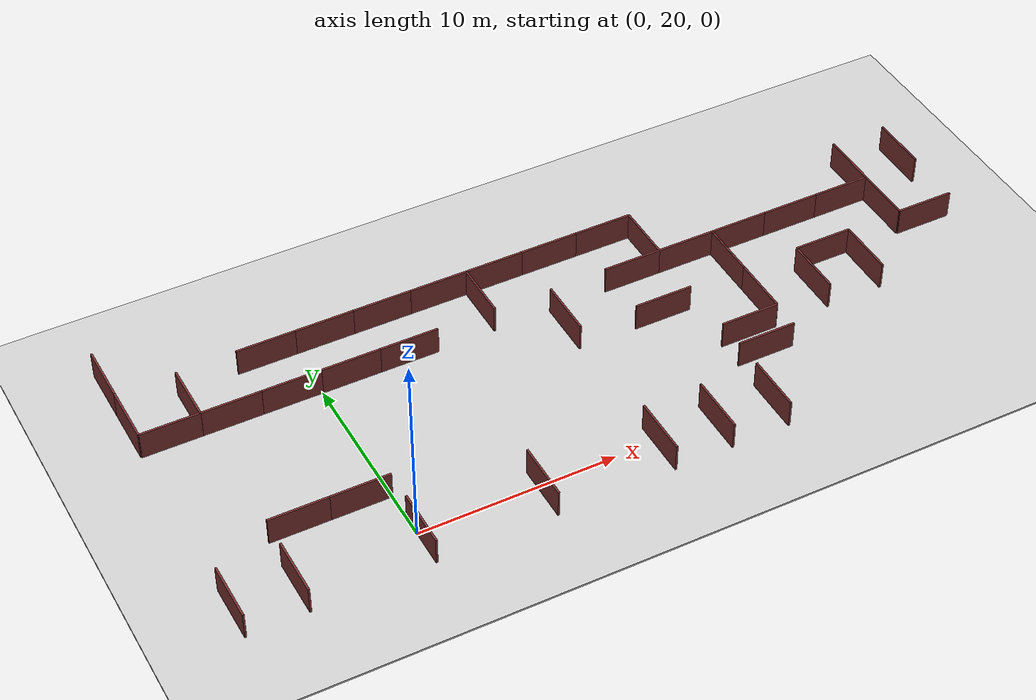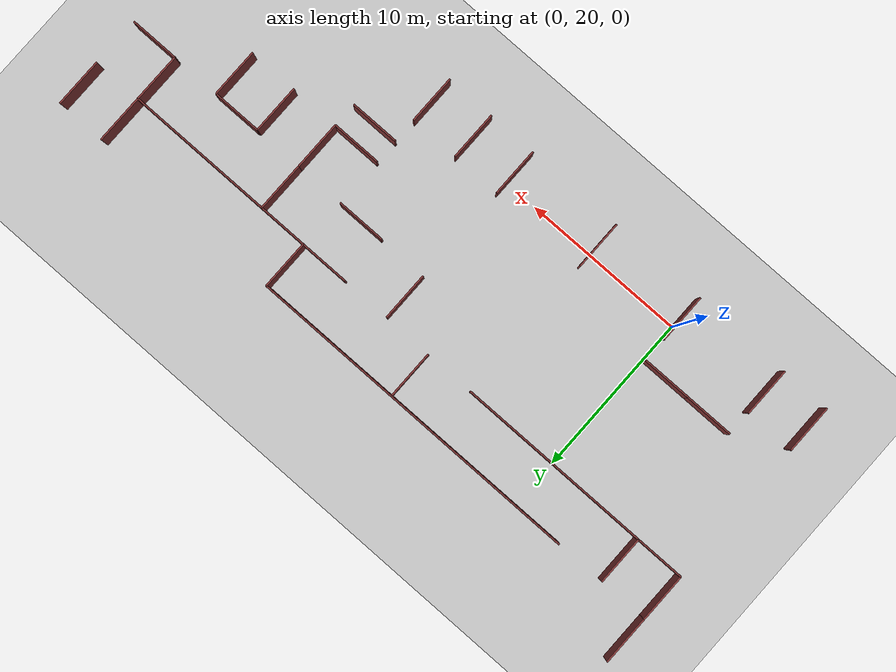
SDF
<sdf version="1.7">
 <world name="maze_world">
  <model name="ground">
   <static>true</static>
   <link name="ground_link">
    <collision name="collision"><geometry><box><size>150 150 0.1</size></box></geometry></collision>
    <visual name="visual">
     <geometry><box><size>150 150 0.1</size></box></geometry>
     <material><diffuse>0.8 0.8 0.8 1</diffuse></material>
    </visual>
   </link>
  </model>
  <model name="wall_w_141">
   <static>true</static>
   <pose>-9.0 19.5 0.75 0 0 1.5708</pose>
   <link name="link">
    <collision name="collision"><geometry><box><size>3 0.1 1.5</size></box></geometry></collision>
    <visual name="visual">
     <geometry><box><size>3 0.1 1.5</size></box></geometry>
     <material><diffuse>0.5 0.2 0.2 1</diffuse></material>
    </visual>
   </link>
  </model>
  <model name="wall_w_142">
   <static>true</static>
   <pose>-6.0 19.5 0.75 0 0 1.5708</pose>
   <link name="link">
    <collision name="collision"><geometry><box><size>3 0.1 1.5</size></box></geometry></collision>
    <visual name="visual">
     <geometry><box><size>3 0.1 1.5</size></box></geometry>
     <material><diffuse>0.5 0.2 0.2 1</diffuse></material>
    </visual>
   </link>
  </model>
  <model name="wall_w_143">
   <static>true</static>
   <pose>0.0 19.5 0.75 0 0 1.5708</pose>
   <link name="link">
    <collision name="collision"><geometry><box><size>3 0.1 1.5</size></box></geometry></collision>
    <visual name="visual">
     <geometry><box><size>3 0.1 1.5</size></box></geometry>
     <material><diffuse>0.5 0.2 0.2 1</diffuse></material>
    </visual>
   </link>
  </model>
  <model name="wall_w_145">
   <static>true</static>
   <pose>6.0 19.5 0.75 0 0 1.5708</pose>
   <link name="link">
    <collision name="collision"><geometry><box><size>3 0.1 1.5</size></box></geometry></collision>
    <visual name="visual">
     <geometry><box><size>3 0.1 1.5</size></box></geometry>
     <material><diffuse>0.5 0.2 0.2 1</diffuse></material>
    </visual>
   </link>
  </model>
  <model name="wall_w_148">
   <static>true</static>
   <pose>12.0 19.5 0.75 0 0 1.5708</pose>
   <link name="link">
    <collision name="collision"><geometry><box><size>3 0.1 1.5</size></box></geometry></collision>
    <visual name="visual">
     <geometry><box><size>3 0.1 1.5</size></box></geometry>
     <material><diffuse>0.5 0.2 0.2 1</diffuse></material>
    </visual>
   </link>
  </model>
  <model name="wall_w_149">
   <static>true</static>
   <pose>15.0 19.5 0.75 0 0 1.5708</pose>
   <link name="link">
    <collision name="collision"><geometry><box><size>3 0.1 1.5</size></box></geometry></collision>
    <visual name="visual">
     <geometry><box><size>3 0.1 1.5</size></box></geometry>
     <material><diffuse>0.5 0.2 0.2 1</diffuse></material>
    </visual>
   </link>
  </model>
  <model name="wall_w_151">
   <static>true</static>
   <pose>18.0 19.5 0.75 0 0 1.5708</pose>
   <link name="link">
    <collision name="collision"><geometry><box><size>3 0.1 1.5</size></box></geometry></collision>
    <visual name="visual">
     <geometry><box><size>3 0.1 1.5</size></box></geometry>
     <material><diffuse>0.5 0.2 0.2 1</diffuse></material>
    </visual>
   </link>
  </model>
  <model name="wall_n_181">
   <static>true</static>
   <pose>19.5 24.0 0.75 0 0 0</pose>
   <link name="link">
    <collision name="collision"><geometry><box><size>3 0.1 1.5</size></box></geometry></collision>
    <visual name="visual">
     <geometry><box><size>3 0.1 1.5</size></box></geometry>
     <material><diffuse>0.5 0.2 0.2 1</diffuse></material>
    </visual>
   </link>
  </model>
  <model name="wall_w_182">
   <static>true</static>
   <pose>21.0 25.5 0.75 0 0 1.5708</pose>
   <link name="link">
    <collision name="collision"><geometry><box><size>3 0.1 1.5</size></box></geometry></collision>
    <visual name="visual">
     <geometry><box><size>3 0.1 1.5</size></box></geometry>
     <material><diffuse>0.5 0.2 0.2 1</diffuse></material>
    </visual>
   </link>
  </model>
  <model name="wall_w_183">
   <static>true</static>
   <pose>24.0 25.5 0.75 0 0 1.5708</pose>
   <link name="link">
    <collision name="collision"><geometry><box><size>3 0.1 1.5</size></box></geometry></collision>
    <visual name="visual">
     <geometry><box><size>3 0.1 1.5</size></box></geometry>
     <material><diffuse>0.5 0.2 0.2 1</diffuse></material>
    </visual>
   </link>
  </model>
  <model name="wall_w_184">
   <static>true</static>
   <pose>27.0 25.5 0.75 0 0 1.5708</pose>
   <link name="link">
    <collision name="collision"><geometry><box><size>3 0.1 1.5</size></box></geometry></collision>
    <visual name="visual">
     <geometry><box><size>3 0.1 1.5</size></box></geometry>
     <material><diffuse>0.5 0.2 0.2 1</diffuse></material>
    </visual>
   </link>
  </model>
  <model name="wall_w_193">
   <static>true</static>
   <pose>12.0 28.5 0.75 0 0 1.5708</pose>
   <link name="link">
    <collision name="collision"><geometry><box><size>3 0.1 1.5</size></box></geometry></collision>
    <visual name="visual">
     <geometry><box><size>3 0.1 1.5</size></box></geometry>
     <material><diffuse>0.5 0.2 0.2 1</diffuse></material>
    </visual>
   </link>
  </model>
  <model name="wall_n_194">
   <static>true</static>
   <pose>16.5 27.0 0.75 0 0 0</pose>
   <link name="link">
    <collision name="collision"><geometry><box><size>3 0.1 1.5</size></box></geometry></collision>
    <visual name="visual">
     <geometry><box><size>3 0.1 1.5</size></box></geometry>
     <material><diffuse>0.5 0.2 0.2 1</diffuse></material>
    </visual>
   </link>
  </model>
  <model name="wall_w_195">
   <static>true</static>
   <pose>21.0 28.5 0.75 0 0 1.5708</pose>
   <link name="link">
    <collision name="collision"><geometry><box><size>3 0.1 1.5</size></box></geometry></collision>
    <visual name="visual">
     <geometry><box><size>3 0.1 1.5</size></box></geometry>
     <material><diffuse>0.5 0.2 0.2 1</diffuse></material>
    </visual>
   </link>
  </model>
  <model name="wall_n_196">
   <static>true</static>
   <pose>25.5 27.0 0.75 0 0 0</pose>
   <link name="link">
    <collision name="collision"><geometry><box><size>3 0.1 1.5</size></box></geometry></collision>
    <visual name="visual">
     <geometry><box><size>3 0.1 1.5</size></box></geometry>
     <material><diffuse>0.5 0.2 0.2 1</diffuse></material>
    </visual>
   </link>
  </model>
  <model name="wall_n_197">
   <static>true</static>
   <pose>31.5 27.0 0.75 0 0 0</pose>
   <link name="link">
    <collision name="collision"><geometry><box><size>3 0.1 1.5</size></box></geometry></collision>
    <visual name="visual">
     <geometry><box><size>3 0.1 1.5</size></box></geometry>
     <material><diffuse>0.5 0.2 0.2 1</diffuse></material>
    </visual>
   </link>
  </model>
  <model name="wall_w_198">
   <static>true</static>
   <pose>30.0 28.5 0.75 0 0 1.5708</pose>
   <link name="link">
    <collision name="collision"><geometry><box><size>3 0.1 1.5</size></box></geometry></collision>
    <visual name="visual">
     <geometry><box><size>3 0.1 1.5</size></box></geometry>
     <material><diffuse>0.5 0.2 0.2 1</diffuse></material>
    </visual>
   </link>
  </model>
  <model name="wall_n_199">
   <static>true</static>
   <pose>-7.5 30.0 0.75 0 0 0</pose>
   <link name="link">
    <collision name="collision"><geometry><box><size>3 0.1 1.5</size></box></geometry></collision>
    <visual name="visual">
     <geometry><box><size>3 0.1 1.5</size></box></geometry>
     <material><diffuse>0.5 0.2 0.2 1</diffuse></material>
    </visual>
   </link>
  </model>
  <model name="wall_w_200">
   <static>true</static>
   <pose>-9.0 31.5 0.75 0 0 1.5708</pose>
   <link name="link">
    <collision name="collision"><geometry><box><size>3 0.1 1.5</size></box></geometry></collision>
    <visual name="visual">
     <geometry><box><size>3 0.1 1.5</size></box></geometry>
     <material><diffuse>0.5 0.2 0.2 1</diffuse></material>
    </visual>
   </link>
  </model>
  <model name="wall_n_201">
   <static>true</static>
   <pose>-4.5 30.0 0.75 0 0 0</pose>
   <link name="link">
    <collision name="collision"><geometry><box><size>3 0.1 1.5</size></box></geometry></collision>
    <visual name="visual">
     <geometry><box><size>3 0.1 1.5</size></box></geometry>
     <material><diffuse>0.5 0.2 0.2 1</diffuse></material>
    </visual>
   </link>
  </model>
  <model name="wall_w_202">
   <static>true</static>
   <pose>-6.0 31.5 0.75 0 0 1.5708</pose>
   <link name="link">
    <collision name="collision"><geometry><box><size>3 0.1 1.5</size></box></geometry></collision>
    <visual name="visual">
     <geometry><box><size>3 0.1 1.5</size></box></geometry>
     <material><diffuse>0.5 0.2 0.2 1</diffuse></material>
    </visual>
   </link>
  </model>
  <model name="wall_n_203">
   <static>true</static>
   <pose>-1.5 30.0 0.75 0 0 0</pose>
   <link name="link">
    <collision name="collision"><geometry><box><size>3 0.1 1.5</size></box></geometry></collision>
    <visual name="visual">
     <geometry><box><size>3 0.1 1.5</size></box></geometry>
     <material><diffuse>0.5 0.2 0.2 1</diffuse></material>
    </visual>
   </link>
  </model>
  <model name="wall_n_204">
   <static>true</static>
   <pose>1.5 30.0 0.75 0 0 0</pose>
   <link name="link">
    <collision name="collision"><geometry><box><size>3 0.1 1.5</size></box></geometry></collision>
    <visual name="visual">
     <geometry><box><size>3 0.1 1.5</size></box></geometry>
     <material><diffuse>0.5 0.2 0.2 1</diffuse></material>
    </visual>
   </link>
  </model>
  <model name="wall_n_205">
   <static>true</static>
   <pose>4.5 30.0 0.75 0 0 0</pose>
   <link name="link">
    <collision name="collision"><geometry><box><size>3 0.1 1.5</size></box></geometry></collision>
    <visual name="visual">
     <geometry><box><size>3 0.1 1.5</size></box></geometry>
     <material><diffuse>0.5 0.2 0.2 1</diffuse></material>
    </visual>
   </link>
  </model>
  <model name="wall_w_206">
   <static>true</static>
   <pose>9.0 31.5 0.75 0 0 1.5708</pose>
   <link name="link">
    <collision name="collision"><geometry><box><size>3 0.1 1.5</size></box></geometry></collision>
    <visual name="visual">
     <geometry><box><size>3 0.1 1.5</size></box></geometry>
     <material><diffuse>0.5 0.2 0.2 1</diffuse></material>
    </visual>
   </link>
  </model>
  <model name="wall_n_207">
   <static>true</static>
   <pose>16.5 30.0 0.75 0 0 0</pose>
   <link name="link">
    <collision name="collision"><geometry><box><size>3 0.1 1.5</size></box></geometry></collision>
    <visual name="visual">
     <geometry><box><size>3 0.1 1.5</size></box></geometry>
     <material><diffuse>0.5 0.2 0.2 1</diffuse></material>
    </visual>
   </link>
  </model>
  <model name="wall_n_208">
   <static>true</static>
   <pose>19.5 30.0 0.75 0 0 0</pose>
   <link name="link">
    <collision name="collision"><geometry><box><size>3 0.1 1.5</size></box></geometry></collision>
    <visual name="visual">
     <geometry><box><size>3 0.1 1.5</size></box></geometry>
     <material><diffuse>0.5 0.2 0.2 1</diffuse></material>
    </visual>
   </link>
  </model>
  <model name="wall_w_209">
   <static>true</static>
   <pose>18.0 31.5 0.75 0 0 1.5708</pose>
   <link name="link">
    <collision name="collision"><geometry><box><size>3 0.1 1.5</size></box></geometry></collision>
    <visual name="visual">
     <geometry><box><size>3 0.1 1.5</size></box></geometry>
     <material><diffuse>0.5 0.2 0.2 1</diffuse></material>
    </visual>
   </link>
  </model>
  <model name="wall_n_210">
   <static>true</static>
   <pose>22.5 30.0 0.75 0 0 0</pose>
   <link name="link">
    <collision name="collision"><geometry><box><size>3 0.1 1.5</size></box></geometry></collision>
    <visual name="visual">
     <geometry><box><size>3 0.1 1.5</size></box></geometry>
     <material><diffuse>0.5 0.2 0.2 1</diffuse></material>
    </visual>
   </link>
  </model>
  <model name="wall_n_211">
   <static>true</static>
   <pose>25.5 30.0 0.75 0 0 0</pose>
   <link name="link">
    <collision name="collision"><geometry><box><size>3 0.1 1.5</size></box></geometry></collision>
    <visual name="visual">
     <geometry><box><size>3 0.1 1.5</size></box></geometry>
     <material><diffuse>0.5 0.2 0.2 1</diffuse></material>
    </visual>
   </link>
  </model>
  <model name="wall_n_212">
   <static>true</static>
   <pose>28.5 30.0 0.75 0 0 0</pose>
   <link name="link">
    <collision name="collision"><geometry><box><size>3 0.1 1.5</size></box></geometry></collision>
    <visual name="visual">
     <geometry><box><size>3 0.1 1.5</size></box></geometry>
     <material><diffuse>0.5 0.2 0.2 1</diffuse></material>
    </visual>
   </link>
  </model>
  <model name="wall_w_213">
   <static>true</static>
   <pose>30.0 31.5 0.75 0 0 1.5708</pose>
   <link name="link">
    <collision name="collision"><geometry><box><size>3 0.1 1.5</size></box></geometry></collision>
    <visual name="visual">
     <geometry><box><size>3 0.1 1.5</size></box></geometry>
     <material><diffuse>0.5 0.2 0.2 1</diffuse></material>
    </visual>
   </link>
  </model>
  <model name="wall_w_214">
   <static>true</static>
   <pose>33.0 31.5 0.75 0 0 1.5708</pose>
   <link name="link">
    <collision name="collision"><geometry><box><size>3 0.1 1.5</size></box></geometry></collision>
    <visual name="visual">
     <geometry><box><size>3 0.1 1.5</size></box></geometry>
     <material><diffuse>0.5 0.2 0.2 1</diffuse></material>
    </visual>
   </link>
  </model>
  <model name="wall_w_215">
   <static>true</static>
   <pose>-9.0 34.5 0.75 0 0 1.5708</pose>
   <link name="link">
    <collision name="collision"><geometry><box><size>3 0.1 1.5</size></box></geometry></collision>
    <visual name="visual">
     <geometry><box><size>3 0.1 1.5</size></box></geometry>
     <material><diffuse>0.5 0.2 0.2 1</diffuse></material>
    </visual>
   </link>
  </model>
  <model name="wall_n_216">
   <static>true</static>
   <pose>-1.5 33.0 0.75 0 0 0</pose>
   <link name="link">
    <collision name="collision"><geometry><box><size>3 0.1 1.5</size></box></geometry></collision>
    <visual name="visual">
     <geometry><box><size>3 0.1 1.5</size></box></geometry>
     <material><diffuse>0.5 0.2 0.2 1</diffuse></material>
    </visual>
   </link>
  </model>
  <model name="wall_n_217">
   <static>true</static>
   <pose>1.5 33.0 0.75 0 0 0</pose>
   <link name="link">
    <collision name="collision"><geometry><box><size>3 0.1 1.5</size></box></geometry></collision>
    <visual name="visual">
     <geometry><box><size>3 0.1 1.5</size></box></geometry>
     <material><diffuse>0.5 0.2 0.2 1</diffuse></material>
    </visual>
   </link>
  </model>
  <model name="wall_n_218">
   <static>true</static>
   <pose>4.5 33.0 0.75 0 0 0</pose>
   <link name="link">
    <collision name="collision"><geometry><box><size>3 0.1 1.5</size></box></geometry></collision>
    <visual name="visual">
     <geometry><box><size>3 0.1 1.5</size></box></geometry>
     <material><diffuse>0.5 0.2 0.2 1</diffuse></material>
    </visual>
   </link>
  </model>
  <model name="wall_n_219">
   <static>true</static>
   <pose>7.5 33.0 0.75 0 0 0</pose>
   <link name="link">
    <collision name="collision"><geometry><box><size>3 0.1 1.5</size></box></geometry></collision>
    <visual name="visual">
     <geometry><box><size>3 0.1 1.5</size></box></geometry>
     <material><diffuse>0.5 0.2 0.2 1</diffuse></material>
    </visual>
   </link>
  </model>
  <model name="wall_n_220">
   <static>true</static>
   <pose>10.5 33.0 0.75 0 0 0</pose>
   <link name="link">
    <collision name="collision"><geometry><box><size>3 0.1 1.5</size></box></geometry></collision>
    <visual name="visual">
     <geometry><box><size>3 0.1 1.5</size></box></geometry>
     <material><diffuse>0.5 0.2 0.2 1</diffuse></material>
    </visual>
   </link>
  </model>
  <model name="wall_n_221">
   <static>true</static>
   <pose>13.5 33.0 0.75 0 0 0</pose>
   <link name="link">
    <collision name="collision"><geometry><box><size>3 0.1 1.5</size></box></geometry></collision>
    <visual name="visual">
     <geometry><box><size>3 0.1 1.5</size></box></geometry>
     <material><diffuse>0.5 0.2 0.2 1</diffuse></material>
    </visual>
   </link>
  </model>
  <model name="wall_n_222">
   <static>true</static>
   <pose>16.5 33.0 0.75 0 0 0</pose>
   <link name="link">
    <collision name="collision"><geometry><box><size>3 0.1 1.5</size></box></geometry></collision>
    <visual name="visual">
     <geometry><box><size>3 0.1 1.5</size></box></geometry>
     <material><diffuse>0.5 0.2 0.2 1</diffuse></material>
    </visual>
   </link>
  </model>
  <model name="wall_top_1">
   <static>true</static>
   <pose>-4.5 22.5 0.75 0 0 0</pose>
   <link name="link">
    <collision name="collision"><geometry><box><size>3 0.1 1.5</size></box></geometry></collision>
    <visual name="visual">
     <geometry><box><size>3 0.1 1.5</size></box></geometry>
     <material><diffuse>0.5 0.2 0.2 1</diffuse></material>
    </visual>
   </link>
  </model>
  <model name="wall_top_2">
   <static>true</static>
   <pose>-1.5 22.5 0.75 0 0 0</pose>
   <link name="link">
    <collision name="collision"><geometry><box><size>3 0.1 1.5</size></box></geometry></collision>
    <visual name="visual">
     <geometry><box><size>3 0.1 1.5</size></box></geometry>
     <material><diffuse>0.5 0.2 0.2 1</diffuse></material>
    </visual>
   </link>
  </model>
  <model name="wall_top_9">
   <static>true</static>
   <pose>19.5 22.5 0.75 0 0 0</pose>
   <link name="link">
    <collision name="collision"><geometry><box><size>3 0.1 1.5</size></box></geometry></collision>
    <visual name="visual">
     <geometry><box><size>3 0.1 1.5</size></box></geometry>
     <material><diffuse>0.5 0.2 0.2 1</diffuse></material>
    </visual>
   </link>
  </model>
 </world>
</sdf>
